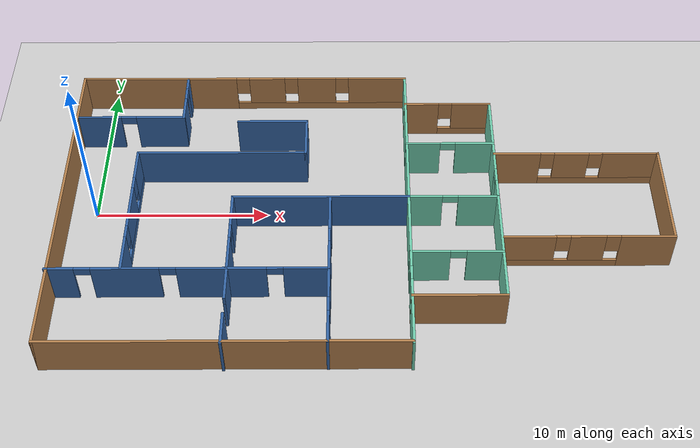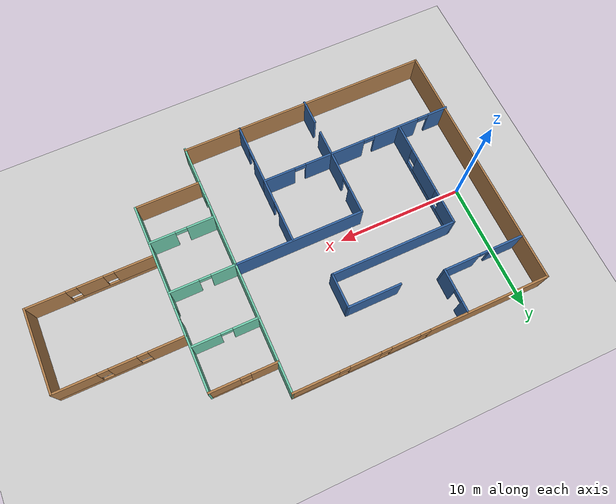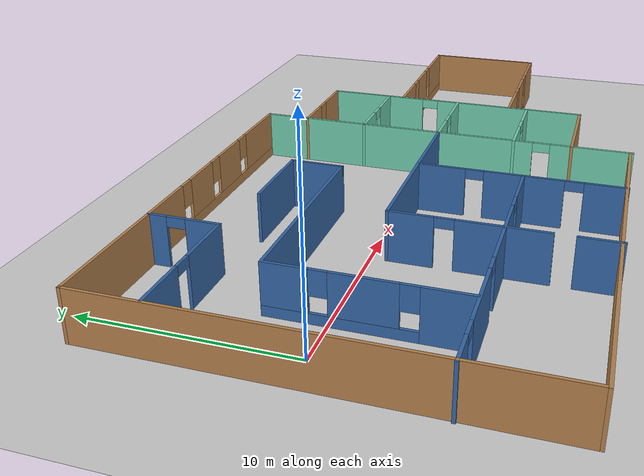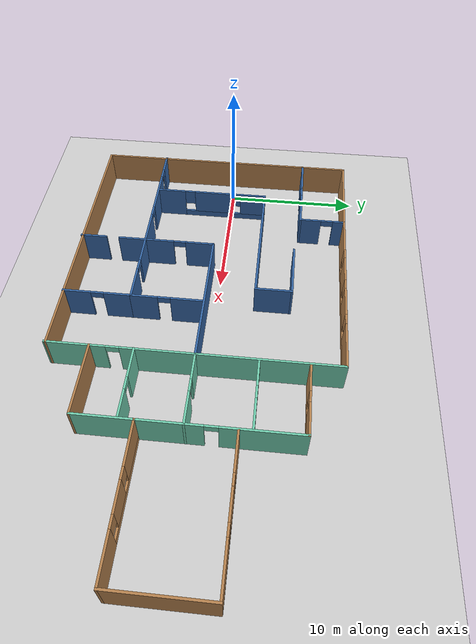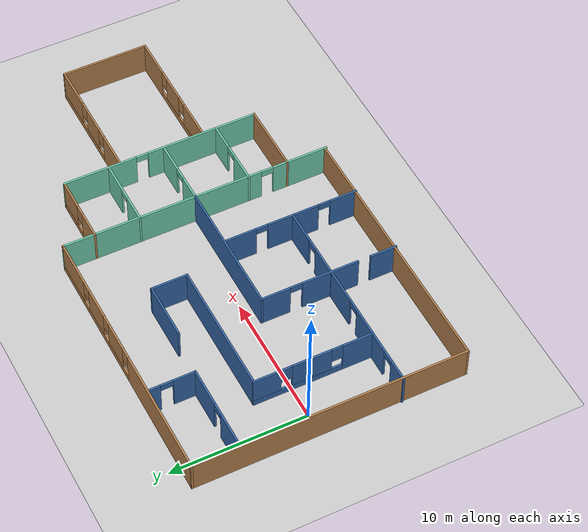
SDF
<sdf version="1.7">
 <world name="default">
  <model name="ground_plane">
   <static>1</static>
   <link name="link">
    <collision name="collision">
     <geometry><plane><normal>0 0 1</normal><size>100 100</size></plane></geometry>
     <surface>
      <contact><collide_bitmask>65535</collide_bitmask></contact>
      <friction><ode><mu>100</mu><mu2>50</mu2></ode></friction>
     </surface>
    </collision>
    <visual name="visual">
     <cast_shadows>0</cast_shadows>
     <geometry><plane><normal>0 0 1</normal><size>100 100</size></plane></geometry>
     <material>
      <script><uri>file://media/materials/scripts/gazebo.material</uri><name>Gazebo/Grey</name></script>
     </material>
    </visual>
   </link>
  </model>
  <model name="lab">
   <pose>15.5975 -0.861877 0 0 -0 0</pose>
   <link name="Wall_23">
    <collision name="Wall_23_Collision">
     <geometry><box><size>10.2 0.15 2.5</size></box></geometry>
     <pose>0 0 1.25 0 -0 0</pose>
    </collision>
    <visual name="Wall_23_Visual">
     <pose>0 0 1.25 0 -0 0</pose>
     <geometry><box><size>10.2 0.15 2.5</size></box></geometry>
     <material>
      <script><uri>file://media/materials/scripts/gazebo.material</uri><name>Gazebo/Grey</name></script>
      <ambient>0.203922 0.396078 0.643137 1</ambient>
     </material>
     <meta><layer>0</layer></meta>
    </visual>
    <pose>-2.41254 0.125 0 0 -0 3.14159</pose>
   </link>
   <link name="Wall_29">
    <pose>2.61246 -4.925 0 0 -0 -1.5708</pose>
    <visual name="Wall_29_Visual_0">
     <pose>-2.55908 0 1.25 0 -0 0</pose>
     <geometry><box><size>5.13184 0.15 2.5</size></box></geometry>
     <material>
      <script><uri>file://media/materials/scripts/gazebo.material</uri><name>Gazebo/Grey</name></script>
      <ambient>0.435294 0.796078 0.67451 1</ambient>
     </material>
     <meta><layer>0</layer></meta>
    </visual>
    <collision name="Wall_29_Collision_0">
     <geometry><box><size>5.13184 0.15 2.5</size></box></geometry>
     <pose>-2.55908 0 1.25 0 -0 0</pose>
    </collision>
    <visual name="Wall_29_Visual_1">
     <pose>3.01592 0 1.25 0 -0 0</pose>
     <geometry><box><size>4.21816 0.15 2.5</size></box></geometry>
     <material>
      <script><uri>file://media/materials/scripts/gazebo.material</uri><name>Gazebo/Grey</name></script>
      <ambient>0.435294 0.796078 0.67451 1</ambient>
     </material>
     <meta><layer>0</layer></meta>
    </visual>
    <collision name="Wall_29_Collision_1">
     <geometry><box><size>4.21816 0.15 2.5</size></box></geometry>
     <pose>3.01592 0 1.25 0 -0 0</pose>
    </collision>
    <visual name="Wall_29_Visual_2">
     <pose>0.456844 0 2.25 0 -0 0</pose>
     <geometry><box><size>0.9 0.15 0.5</size></box></geometry>
     <material>
      <script><uri>file://media/materials/scripts/gazebo.material</uri><name>Gazebo/Grey</name></script>
      <ambient>0.435294 0.796078 0.67451 1</ambient>
     </material>
     <meta><layer>0</layer></meta>
    </visual>
    <collision name="Wall_29_Collision_2">
     <geometry><box><size>0.9 0.15 0.5</size></box></geometry>
     <pose>0.456844 0 2.25 0 -0 0</pose>
    </collision>
   </link>
   <link name="Wall_31">
    <collision name="Wall_31_Collision">
     <geometry><box><size>20 0.15 2.5</size></box></geometry>
     <pose>0 0 1.25 0 -0 0</pose>
    </collision>
    <visual name="Wall_31_Visual">
     <pose>0 0 1.25 0 -0 0</pose>
     <geometry><box><size>20 0.15 2.5</size></box></geometry>
     <material>
      <script><uri>file://media/materials/scripts/gazebo.material</uri><name>Gazebo/Wood</name></script>
      <ambient>1 1 1 1</ambient>
     </material>
     <meta><layer>0</layer></meta>
    </visual>
    <pose>-7.31254 -9.875 0 0 -0 0</pose>
   </link>
   <link name="Wall_33">
    <pose>-7.43754 -4.925 0 0 -0 -1.5708</pose>
    <visual name="Wall_33_Visual_0">
     <pose>-4.0304 0 1.25 0 -0 0</pose>
     <geometry><box><size>2.18921 0.15 2.5</size></box></geometry>
     <material>
      <script><uri>file://media/materials/scripts/gazebo.material</uri><name>Gazebo/Grey</name></script>
      <ambient>0.203922 0.396078 0.643137 1</ambient>
     </material>
     <meta><layer>0</layer></meta>
    </visual>
    <collision name="Wall_33_Collision_0">
     <geometry><box><size>2.18921 0.15 2.5</size></box></geometry>
     <pose>-4.0304 0 1.25 0 -0 0</pose>
    </collision>
    <visual name="Wall_33_Visual_1">
     <pose>0.082327 0 1.25 0 -0 0</pose>
     <geometry><box><size>4.23624 0.15 2.5</size></box></geometry>
     <material>
      <script><uri>file://media/materials/scripts/gazebo.material</uri><name>Gazebo/Grey</name></script>
      <ambient>0.203922 0.396078 0.643137 1</ambient>
     </material>
     <meta><layer>0</layer></meta>
    </visual>
    <collision name="Wall_33_Collision_1">
     <geometry><box><size>4.23624 0.15 2.5</size></box></geometry>
     <pose>0.082327 0 1.25 0 -0 0</pose>
    </collision>
    <visual name="Wall_33_Visual_2">
     <pose>4.11272 0 1.25 0 -0 0</pose>
     <geometry><box><size>2.02455 0.15 2.5</size></box></geometry>
     <material>
      <script><uri>file://media/materials/scripts/gazebo.material</uri><name>Gazebo/Grey</name></script>
      <ambient>0.203922 0.396078 0.643137 1</ambient>
     </material>
     <meta><layer>0</layer></meta>
    </visual>
    <collision name="Wall_33_Collision_2">
     <geometry><box><size>2.02455 0.15 2.5</size></box></geometry>
     <pose>4.11272 0 1.25 0 -0 0</pose>
    </collision>
    <visual name="Wall_33_Visual_3">
     <pose>-2.48579 0 2.25 0 -0 0</pose>
     <geometry><box><size>0.9 0.15 0.5</size></box></geometry>
     <material>
      <script><uri>file://media/materials/scripts/gazebo.material</uri><name>Gazebo/Grey</name></script>
      <ambient>0.203922 0.396078 0.643137 1</ambient>
     </material>
     <meta><layer>0</layer></meta>
    </visual>
    <collision name="Wall_33_Collision_3">
     <geometry><box><size>0.9 0.15 0.5</size></box></geometry>
     <pose>-2.48579 0 2.25 0 -0 0</pose>
    </collision>
    <visual name="Wall_33_Visual_4">
     <pose>2.20045 0 2.25 0 -0 0</pose>
     <geometry><box><size>0 0.15 0.5</size></box></geometry>
     <material>
      <script><uri>file://media/materials/scripts/gazebo.material</uri><name>Gazebo/Grey</name></script>
      <ambient>0.203922 0.396078 0.643137 1</ambient>
     </material>
     <meta><layer>0</layer></meta>
    </visual>
    <collision name="Wall_33_Collision_4">
     <geometry><box><size>0 0.15 0.5</size></box></geometry>
     <pose>2.20045 0 2.25 0 -0 0</pose>
    </collision>
   </link>
   <link name="Wall_35">
    <pose>-4.67701 -5.06118 0 0 -0 0</pose>
    <visual name="Wall_35_Visual_0">
     <pose>-1.73152 0 1.25 0 -0 0</pose>
     <geometry><box><size>2.28696 0.15 2.5</size></box></geometry>
     <material>
      <script><uri>file://media/materials/scripts/gazebo.material</uri><name>Gazebo/Grey</name></script>
      <ambient>0.203922 0.396078 0.643137 1</ambient>
     </material>
     <meta><layer>0</layer></meta>
    </visual>
    <collision name="Wall_35_Collision_0">
     <geometry><box><size>2.28696 0.15 2.5</size></box></geometry>
     <pose>-1.73152 0 1.25 0 -0 0</pose>
    </collision>
    <visual name="Wall_35_Visual_1">
     <pose>1.59348 0 1.25 0 -0 0</pose>
     <geometry><box><size>2.56304 0.15 2.5</size></box></geometry>
     <material>
      <script><uri>file://media/materials/scripts/gazebo.material</uri><name>Gazebo/Grey</name></script>
      <ambient>0.203922 0.396078 0.643137 1</ambient>
     </material>
     <meta><layer>0</layer></meta>
    </visual>
    <collision name="Wall_35_Collision_1">
     <geometry><box><size>2.56304 0.15 2.5</size></box></geometry>
     <pose>1.59348 0 1.25 0 -0 0</pose>
    </collision>
    <visual name="Wall_35_Visual_2">
     <pose>-0.138039 0 2.25 0 -0 0</pose>
     <geometry><box><size>0.9 0.15 0.5</size></box></geometry>
     <material>
      <script><uri>file://media/materials/scripts/gazebo.material</uri><name>Gazebo/Grey</name></script>
      <ambient>0.203922 0.396078 0.643137 1</ambient>
     </material>
     <meta><layer>0</layer></meta>
    </visual>
    <collision name="Wall_35_Collision_2">
     <geometry><box><size>0.9 0.15 0.5</size></box></geometry>
     <pose>-0.138039 0 2.25 0 -0 0</pose>
    </collision>
   </link>
   <link name="Wall_36">
    <pose>-1.87701 -2.51118 0 0 -0 1.5708</pose>
    <visual name="Wall_36_Visual_0">
     <pose>-1.63527 0 1.25 0 -0 0</pose>
     <geometry><box><size>1.97946 0.15 2.5</size></box></geometry>
     <material>
      <script><uri>file://media/materials/scripts/gazebo.material</uri><name>Gazebo/Grey</name></script>
      <ambient>0.203922 0.396078 0.643137 1</ambient>
     </material>
     <meta><layer>0</layer></meta>
    </visual>
    <collision name="Wall_36_Collision_0">
     <geometry><box><size>1.97946 0.15 2.5</size></box></geometry>
     <pose>-1.63527 0 1.25 0 -0 0</pose>
    </collision>
    <visual name="Wall_36_Visual_1">
     <pose>1.43973 0 1.25 0 -0 0</pose>
     <geometry><box><size>2.37054 0.15 2.5</size></box></geometry>
     <material>
      <script><uri>file://media/materials/scripts/gazebo.material</uri><name>Gazebo/Grey</name></script>
      <ambient>0.203922 0.396078 0.643137 1</ambient>
     </material>
     <meta><layer>0</layer></meta>
    </visual>
    <collision name="Wall_36_Collision_1">
     <geometry><box><size>2.37054 0.15 2.5</size></box></geometry>
     <pose>1.43973 0 1.25 0 -0 0</pose>
    </collision>
    <visual name="Wall_36_Visual_2">
     <pose>-0.195537 0 2.25 0 -0 0</pose>
     <geometry><box><size>0.9 0.15 0.5</size></box></geometry>
     <material>
      <script><uri>file://media/materials/scripts/gazebo.material</uri><name>Gazebo/Grey</name></script>
      <ambient>0.203922 0.396078 0.643137 1</ambient>
     </material>
     <meta><layer>0</layer></meta>
    </visual>
    <collision name="Wall_36_Collision_2">
     <geometry><box><size>0.9 0.15 0.5</size></box></geometry>
     <pose>-0.195537 0 2.25 0 -0 0</pose>
    </collision>
   </link>
   <link name="Wall_38">
    <pose>-1.87701 -7.48618 0 0 -0 -1.5708</pose>
    <visual name="Wall_38_Visual_0">
     <pose>-1.48387 0 1.25 0 -0 0</pose>
     <geometry><box><size>2.03226 0.15 2.5</size></box></geometry>
     <material>
      <script><uri>file://media/materials/scripts/gazebo.material</uri><name>Gazebo/Grey</name></script>
      <ambient>0.203922 0.396078 0.643137 1</ambient>
     </material>
     <meta><layer>0</layer></meta>
    </visual>
    <collision name="Wall_38_Collision_0">
     <geometry><box><size>2.03226 0.15 2.5</size></box></geometry>
     <pose>-1.48387 0 1.25 0 -0 0</pose>
    </collision>
    <visual name="Wall_38_Visual_1">
     <pose>1.46613 0 1.25 0 -0 0</pose>
     <geometry><box><size>2.06774 0.15 2.5</size></box></geometry>
     <material>
      <script><uri>file://media/materials/scripts/gazebo.material</uri><name>Gazebo/Grey</name></script>
      <ambient>0.203922 0.396078 0.643137 1</ambient>
     </material>
     <meta><layer>0</layer></meta>
    </visual>
    <collision name="Wall_38_Collision_1">
     <geometry><box><size>2.06774 0.15 2.5</size></box></geometry>
     <pose>1.46613 0 1.25 0 -0 0</pose>
    </collision>
    <visual name="Wall_38_Visual_2">
     <pose>-0.01774 0 2.25 0 -0 0</pose>
     <geometry><box><size>0.9 0.15 0.5</size></box></geometry>
     <material>
      <script><uri>file://media/materials/scripts/gazebo.material</uri><name>Gazebo/Grey</name></script>
      <ambient>0.203922 0.396078 0.643137 1</ambient>
     </material>
     <meta><layer>0</layer></meta>
    </visual>
    <collision name="Wall_38_Collision_2">
     <geometry><box><size>0.9 0.15 0.5</size></box></geometry>
     <pose>-0.01774 0 2.25 0 -0 0</pose>
    </collision>
   </link>
   <link name="Wall_40">
    <pose>-12.402 -5.06118 0 0 -0 3.14159</pose>
    <visual name="Wall_40_Visual_0">
     <pose>-3.60259 0 1.25 0 -0 0</pose>
     <geometry><box><size>2.79481 0.15 2.5</size></box></geometry>
     <material>
      <script><uri>file://media/materials/scripts/gazebo.material</uri><name>Gazebo/Grey</name></script>
      <ambient>0.203922 0.396078 0.643137 1</ambient>
     </material>
     <meta><layer>0</layer></meta>
    </visual>
    <collision name="Wall_40_Collision_0">
     <geometry><box><size>2.79481 0.15 2.5</size></box></geometry>
     <pose>-3.60259 0 1.25 0 -0 0</pose>
    </collision>
    <visual name="Wall_40_Visual_1">
     <pose>0.57217 0 1.25 0 -0 0</pose>
     <geometry><box><size>3.75472 0.15 2.5</size></box></geometry>
     <material>
      <script><uri>file://media/materials/scripts/gazebo.material</uri><name>Gazebo/Grey</name></script>
      <ambient>0.203922 0.396078 0.643137 1</ambient>
     </material>
     <meta><layer>0</layer></meta>
    </visual>
    <collision name="Wall_40_Collision_1">
     <geometry><box><size>3.75472 0.15 2.5</size></box></geometry>
     <pose>0.57217 0 1.25 0 -0 0</pose>
    </collision>
    <visual name="Wall_40_Visual_2">
     <pose>4.17476 0 1.25 0 -0 0</pose>
     <geometry><box><size>1.65047 0.15 2.5</size></box></geometry>
     <material>
      <script><uri>file://media/materials/scripts/gazebo.material</uri><name>Gazebo/Grey</name></script>
      <ambient>0.203922 0.396078 0.643137 1</ambient>
     </material>
     <meta><layer>0</layer></meta>
    </visual>
    <collision name="Wall_40_Collision_2">
     <geometry><box><size>1.65047 0.15 2.5</size></box></geometry>
     <pose>4.17476 0 1.25 0 -0 0</pose>
    </collision>
    <visual name="Wall_40_Visual_3">
     <pose>-1.75519 0 2.25 0 -0 0</pose>
     <geometry><box><size>0.9 0.15 0.5</size></box></geometry>
     <material>
      <script><uri>file://media/materials/scripts/gazebo.material</uri><name>Gazebo/Grey</name></script>
      <ambient>0.203922 0.396078 0.643137 1</ambient>
     </material>
     <meta><layer>0</layer></meta>
    </visual>
    <collision name="Wall_40_Collision_3">
     <geometry><box><size>0.9 0.15 0.5</size></box></geometry>
     <pose>-1.75519 0 2.25 0 -0 0</pose>
    </collision>
    <visual name="Wall_40_Visual_4">
     <pose>2.89953 0 2.25 0 -0 0</pose>
     <geometry><box><size>0.9 0.15 0.5</size></box></geometry>
     <material>
      <script><uri>file://media/materials/scripts/gazebo.material</uri><name>Gazebo/Grey</name></script>
      <ambient>0.203922 0.396078 0.643137 1</ambient>
     </material>
     <meta><layer>0</layer></meta>
    </visual>
    <collision name="Wall_40_Collision_4">
     <geometry><box><size>0.9 0.15 0.5</size></box></geometry>
     <pose>2.89953 0 2.25 0 -0 0</pose>
    </collision>
   </link>
   <link name="Wall_49">
    <pose>-13.22 -0.686186 0 0 -0 1.5708</pose>
    <visual name="Wall_49_Visual_0">
     <pose>-3.26401 0 1.25 0 -0 0</pose>
     <geometry><box><size>2.22198 0.15 2.5</size></box></geometry>
     <material>
      <script><uri>file://media/materials/scripts/gazebo.material</uri><name>Gazebo/Grey</name></script>
      <ambient>0.203922 0.396078 0.643137 1</ambient>
     </material>
     <meta><layer>0</layer></meta>
    </visual>
    <collision name="Wall_49_Collision_0">
     <geometry><box><size>2.22198 0.15 2.5</size></box></geometry>
     <pose>-3.26401 0 1.25 0 -0 0</pose>
    </collision>
    <visual name="Wall_49_Visual_1">
     <pose>1.11099 0 0.25 0 -0 0</pose>
     <geometry><box><size>6.52802 0.15 0.5</size></box></geometry>
     <material>
      <script><uri>file://media/materials/scripts/gazebo.material</uri><name>Gazebo/Grey</name></script>
      <ambient>0.203922 0.396078 0.643137 1</ambient>
     </material>
     <meta><layer>0</layer></meta>
    </visual>
    <collision name="Wall_49_Collision_1">
     <geometry><box><size>6.52802 0.15 0.5</size></box></geometry>
     <pose>1.11099 0 0.25 0 -0 0</pose>
    </collision>
    <visual name="Wall_49_Visual_2">
     <pose>0.092815 0 1.5 0 -0 0</pose>
     <geometry><box><size>2.89167 0.15 2</size></box></geometry>
     <material>
      <script><uri>file://media/materials/scripts/gazebo.material</uri><name>Gazebo/Grey</name></script>
      <ambient>0.203922 0.396078 0.643137 1</ambient>
     </material>
     <meta><layer>0</layer></meta>
    </visual>
    <collision name="Wall_49_Collision_2">
     <geometry><box><size>2.89167 0.15 2</size></box></geometry>
     <pose>0.092815 0 1.5 0 -0 0</pose>
    </collision>
    <visual name="Wall_49_Visual_3">
     <pose>3.35683 0 1.5 0 -0 0</pose>
     <geometry><box><size>2.03635 0.15 2</size></box></geometry>
     <material>
      <script><uri>file://media/materials/scripts/gazebo.material</uri><name>Gazebo/Grey</name></script>
      <ambient>0.203922 0.396078 0.643137 1</ambient>
     </material>
     <meta><layer>0</layer></meta>
    </visual>
    <collision name="Wall_49_Collision_3">
     <geometry><box><size>2.03635 0.15 2</size></box></geometry>
     <pose>3.35683 0 1.5 0 -0 0</pose>
    </collision>
    <visual name="Wall_49_Visual_4">
     <pose>-1.75302 0 1.9 0 -0 0</pose>
     <geometry><box><size>0.8 0.15 1.2</size></box></geometry>
     <material>
      <script><uri>file://media/materials/scripts/gazebo.material</uri><name>Gazebo/Grey</name></script>
      <ambient>0.203922 0.396078 0.643137 1</ambient>
     </material>
     <meta><layer>0</layer></meta>
    </visual>
    <collision name="Wall_49_Collision_4">
     <geometry><box><size>0.8 0.15 1.2</size></box></geometry>
     <pose>-1.75302 0 1.9 0 -0 0</pose>
    </collision>
    <visual name="Wall_49_Visual_5">
     <pose>1.93865 0 1.9 0 -0 0</pose>
     <geometry><box><size>0.8 0.15 1.2</size></box></geometry>
     <material>
      <script><uri>file://media/materials/scripts/gazebo.material</uri><name>Gazebo/Grey</name></script>
      <ambient>0.203922 0.396078 0.643137 1</ambient>
     </material>
     <meta><layer>0</layer></meta>
    </visual>
    <collision name="Wall_49_Collision_5">
     <geometry><box><size>0.8 0.15 1.2</size></box></geometry>
     <pose>1.93865 0 1.9 0 -0 0</pose>
    </collision>
   </link>
   <link name="Wall_5">
    <collision name="Wall_5_Collision">
     <geometry><box><size>20 0.15 2.5</size></box></geometry>
     <pose>0 0 1.25 0 -0 0</pose>
    </collision>
    <visual name="Wall_5_Visual">
     <pose>0 0 1.25 0 -0 0</pose>
     <geometry><box><size>20 0.15 2.5</size></box></geometry>
     <material>
      <script><uri>file://media/materials/scripts/gazebo.material</uri><name>Gazebo/Wood</name></script>
      <ambient>1 1 1 1</ambient>
     </material>
     <meta><layer>0</layer></meta>
    </visual>
    <pose>-17.2375 0.05 0 0 -0 -1.5708</pose>
   </link>
   <link name="Wall_50">
    <collision name="Wall_50_Collision">
     <geometry><box><size>10 0.15 2.5</size></box></geometry>
     <pose>0 0 1.25 0 -0 0</pose>
    </collision>
    <visual name="Wall_50_Visual">
     <pose>0 0 1.25 0 -0 0</pose>
     <geometry><box><size>10 0.15 2.5</size></box></geometry>
     <material>
      <script><uri>file://media/materials/scripts/gazebo.material</uri><name>Gazebo/Grey</name></script>
      <ambient>0.203922 0.396078 0.643137 1</ambient>
     </material>
     <meta><layer>0</layer></meta>
    </visual>
    <pose>-8.29501 3.61381 0 0 -0 0</pose>
   </link>
   <link name="Wall_51">
    <collision name="Wall_51_Collision">
     <geometry><box><size>2.75 0.15 2.5</size></box></geometry>
     <pose>0 0 1.25 0 -0 0</pose>
    </collision>
    <visual name="Wall_51_Visual">
     <pose>0 0 1.25 0 -0 0</pose>
     <geometry><box><size>2.75 0.15 2.5</size></box></geometry>
     <material>
      <script><uri>file://media/materials/scripts/gazebo.material</uri><name>Gazebo/Grey</name></script>
      <ambient>0.203922 0.396078 0.643137 1</ambient>
     </material>
     <meta><layer>0</layer></meta>
    </visual>
    <pose>-3.37001 4.91381 0 0 -0 1.5708</pose>
   </link>
   <link name="Wall_52">
    <collision name="Wall_52_Collision">
     <geometry><box><size>4.25 0.15 2.5</size></box></geometry>
     <pose>0 0 1.25 0 -0 0</pose>
    </collision>
    <visual name="Wall_52_Visual">
     <pose>0 0 1.25 0 -0 0</pose>
     <geometry><box><size>4.25 0.15 2.5</size></box></geometry>
     <material>
      <script><uri>file://media/materials/scripts/gazebo.material</uri><name>Gazebo/Grey</name></script>
      <ambient>0.203922 0.396078 0.643137 1</ambient>
     </material>
     <meta><layer>0</layer></meta>
    </visual>
    <pose>-5.42001 6.21381 0 0 -0 3.14159</pose>
   </link>
   <link name="Wall_54">
    <pose>-10.8124 8.26601 0 0 -0 -1.5708</pose>
    <visual name="Wall_54_Visual_0">
     <pose>-1.2849 0 1.25 0 -0 0</pose>
     <geometry><box><size>0.930201 0.15 2.5</size></box></geometry>
     <material>
      <script><uri>file://media/materials/scripts/gazebo.material</uri><name>Gazebo/Grey</name></script>
      <ambient>0.203922 0.396078 0.643137 1</ambient>
     </material>
     <meta><layer>0</layer></meta>
    </visual>
    <collision name="Wall_54_Collision_0">
     <geometry><box><size>0.930201 0.15 2.5</size></box></geometry>
     <pose>-1.2849 0 1.25 0 -0 0</pose>
    </collision>
    <visual name="Wall_54_Visual_1">
     <pose>0.915101 0 1.25 0 -0 0</pose>
     <geometry><box><size>1.6698 0.15 2.5</size></box></geometry>
     <material>
      <script><uri>file://media/materials/scripts/gazebo.material</uri><name>Gazebo/Grey</name></script>
      <ambient>0.203922 0.396078 0.643137 1</ambient>
     </material>
     <meta><layer>0</layer></meta>
    </visual>
    <collision name="Wall_54_Collision_1">
     <geometry><box><size>1.6698 0.15 2.5</size></box></geometry>
     <pose>0.915101 0 1.25 0 -0 0</pose>
    </collision>
    <visual name="Wall_54_Visual_2">
     <pose>-0.369799 0 2.25 0 -0 0</pose>
     <geometry><box><size>0.9 0.15 0.5</size></box></geometry>
     <material>
      <script><uri>file://media/materials/scripts/gazebo.material</uri><name>Gazebo/Grey</name></script>
      <ambient>0.203922 0.396078 0.643137 1</ambient>
     </material>
     <meta><layer>0</layer></meta>
    </visual>
    <collision name="Wall_54_Collision_2">
     <geometry><box><size>0.9 0.15 0.5</size></box></geometry>
     <pose>-0.369799 0 2.25 0 -0 0</pose>
    </collision>
   </link>
   <link name="Wall_55">
    <pose>-13.9874 6.59101 0 0 -0 3.14159</pose>
    <visual name="Wall_55_Visual_0">
     <pose>-1.78146 0 1.25 0 -0 0</pose>
     <geometry><box><size>2.93709 0.15 2.5</size></box></geometry>
     <material>
      <script><uri>file://media/materials/scripts/gazebo.material</uri><name>Gazebo/Grey</name></script>
      <ambient>0.203922 0.396078 0.643137 1</ambient>
     </material>
     <meta><layer>0</layer></meta>
    </visual>
    <collision name="Wall_55_Collision_0">
     <geometry><box><size>2.93709 0.15 2.5</size></box></geometry>
     <pose>-1.78146 0 1.25 0 -0 0</pose>
    </collision>
    <visual name="Wall_55_Visual_1">
     <pose>1.91854 0 1.25 0 -0 0</pose>
     <geometry><box><size>2.66291 0.15 2.5</size></box></geometry>
     <material>
      <script><uri>file://media/materials/scripts/gazebo.material</uri><name>Gazebo/Grey</name></script>
      <ambient>0.203922 0.396078 0.643137 1</ambient>
     </material>
     <meta><layer>0</layer></meta>
    </visual>
    <collision name="Wall_55_Collision_1">
     <geometry><box><size>2.66291 0.15 2.5</size></box></geometry>
     <pose>1.91854 0 1.25 0 -0 0</pose>
    </collision>
    <visual name="Wall_55_Visual_2">
     <pose>0.137089 0 2.25 0 -0 0</pose>
     <geometry><box><size>0.9 0.15 0.5</size></box></geometry>
     <material>
      <script><uri>file://media/materials/scripts/gazebo.material</uri><name>Gazebo/Grey</name></script>
      <ambient>0.203922 0.396078 0.643137 1</ambient>
     </material>
     <meta><layer>0</layer></meta>
    </visual>
    <collision name="Wall_55_Collision_2">
     <geometry><box><size>0.9 0.15 0.5</size></box></geometry>
     <pose>0.137089 0 2.25 0 -0 0</pose>
    </collision>
   </link>
   <link name="Wall_57">
    <pose>5.16025 7.66391 0 0 -0 0</pose>
    <visual name="Wall_57_Visual_0">
     <pose>-1.57792 0 1.25 0 -0 0</pose>
     <geometry><box><size>2.09416 0.15 2.5</size></box></geometry>
     <material>
      <script><uri>file://media/materials/scripts/gazebo.material</uri><name>Gazebo/Wood</name></script>
      <ambient>0.921569 0.807843 0.615686 1</ambient>
     </material>
     <meta><layer>0</layer></meta>
    </visual>
    <collision name="Wall_57_Collision_0">
     <geometry><box><size>2.09416 0.15 2.5</size></box></geometry>
     <pose>-1.57792 0 1.25 0 -0 0</pose>
    </collision>
    <visual name="Wall_57_Visual_1">
     <pose>1.04708 0 0.25 0 -0 0</pose>
     <geometry><box><size>3.15584 0.15 0.5</size></box></geometry>
     <material>
      <script><uri>file://media/materials/scripts/gazebo.material</uri><name>Gazebo/Wood</name></script>
      <ambient>0.921569 0.807843 0.615686 1</ambient>
     </material>
     <meta><layer>0</layer></meta>
    </visual>
    <collision name="Wall_57_Collision_1">
     <geometry><box><size>3.15584 0.15 0.5</size></box></geometry>
     <pose>1.04708 0 0.25 0 -0 0</pose>
    </collision>
    <visual name="Wall_57_Visual_2">
     <pose>1.44708 0 1.5 0 -0 0</pose>
     <geometry><box><size>2.35584 0.15 2</size></box></geometry>
     <material>
      <script><uri>file://media/materials/scripts/gazebo.material</uri><name>Gazebo/Wood</name></script>
      <ambient>0.921569 0.807843 0.615686 1</ambient>
     </material>
     <meta><layer>0</layer></meta>
    </visual>
    <collision name="Wall_57_Collision_2">
     <geometry><box><size>2.35584 0.15 2</size></box></geometry>
     <pose>1.44708 0 1.5 0 -0 0</pose>
    </collision>
    <visual name="Wall_57_Visual_3">
     <pose>-0.130837 0 1.9 0 -0 0</pose>
     <geometry><box><size>0.8 0.15 1.2</size></box></geometry>
     <material>
      <script><uri>file://media/materials/scripts/gazebo.material</uri><name>Gazebo/Wood</name></script>
      <ambient>0.921569 0.807843 0.615686 1</ambient>
     </material>
     <meta><layer>0</layer></meta>
    </visual>
    <collision name="Wall_57_Collision_3">
     <geometry><box><size>0.8 0.15 1.2</size></box></geometry>
     <pose>-0.130837 0 1.9 0 -0 0</pose>
    </collision>
   </link>
   <link name="Wall_58">
    <pose>7.71025 0.363913 0 0 -0 -1.5708</pose>
    <visual name="Wall_58_Visual_0">
     <pose>-4.62429 0 1.25 0 -0 0</pose>
     <geometry><box><size>5.50142 0.15 2.5</size></box></geometry>
     <material>
      <script><uri>file://media/materials/scripts/gazebo.material</uri><name>Gazebo/Grey</name></script>
      <ambient>0.435294 0.796078 0.67451 1</ambient>
     </material>
     <meta><layer>0</layer></meta>
    </visual>
    <collision name="Wall_58_Collision_0">
     <geometry><box><size>5.50142 0.15 2.5</size></box></geometry>
     <pose>-4.62429 0 1.25 0 -0 0</pose>
    </collision>
    <visual name="Wall_58_Visual_1">
     <pose>3.20071 0 1.25 0 -0 0</pose>
     <geometry><box><size>8.34858 0.15 2.5</size></box></geometry>
     <material>
      <script><uri>file://media/materials/scripts/gazebo.material</uri><name>Gazebo/Grey</name></script>
      <ambient>0.435294 0.796078 0.67451 1</ambient>
     </material>
     <meta><layer>0</layer></meta>
    </visual>
    <collision name="Wall_58_Collision_1">
     <geometry><box><size>8.34858 0.15 2.5</size></box></geometry>
     <pose>3.20071 0 1.25 0 -0 0</pose>
    </collision>
    <visual name="Wall_58_Visual_2">
     <pose>-1.42358 0 2.25 0 -0 0</pose>
     <geometry><box><size>0.9 0.15 0.5</size></box></geometry>
     <material>
      <script><uri>file://media/materials/scripts/gazebo.material</uri><name>Gazebo/Grey</name></script>
      <ambient>0.435294 0.796078 0.67451 1</ambient>
     </material>
     <meta><layer>0</layer></meta>
    </visual>
    <collision name="Wall_58_Collision_2">
     <geometry><box><size>0.9 0.15 0.5</size></box></geometry>
     <pose>-1.42358 0 2.25 0 -0 0</pose>
    </collision>
   </link>
   <link name="Wall_59">
    <collision name="Wall_59_Collision">
     <geometry><box><size>5.25 0.15 2.5</size></box></geometry>
     <pose>0 0 1.25 0 -0 0</pose>
    </collision>
    <visual name="Wall_59_Visual">
     <pose>0 0 1.25 0 -0 0</pose>
     <geometry><box><size>5.25 0.15 2.5</size></box></geometry>
     <material>
      <script><uri>file://media/materials/scripts/gazebo.material</uri><name>Gazebo/Wood</name></script>
      <ambient>1 1 1 1</ambient>
     </material>
     <meta><layer>0</layer></meta>
    </visual>
    <pose>5.16025 -6.93609 0 0 -0 3.14159</pose>
   </link>
   <link name="Wall_61">
    <pose>5.15095 4.32005 0 0 -0 0</pose>
    <visual name="Wall_61_Visual_0">
     <pose>-1.59827 0 1.25 0 -0 0</pose>
     <geometry><box><size>2.05346 0.15 2.5</size></box></geometry>
     <material>
      <script><uri>file://media/materials/scripts/gazebo.material</uri><name>Gazebo/Grey</name></script>
      <ambient>0.435294 0.796078 0.67451 1</ambient>
     </material>
     <meta><layer>0</layer></meta>
    </visual>
    <collision name="Wall_61_Collision_0">
     <geometry><box><size>2.05346 0.15 2.5</size></box></geometry>
     <pose>-1.59827 0 1.25 0 -0 0</pose>
    </collision>
    <visual name="Wall_61_Visual_1">
     <pose>1.47673 0 1.25 0 -0 0</pose>
     <geometry><box><size>2.29654 0.15 2.5</size></box></geometry>
     <material>
      <script><uri>file://media/materials/scripts/gazebo.material</uri><name>Gazebo/Grey</name></script>
      <ambient>0.435294 0.796078 0.67451 1</ambient>
     </material>
     <meta><layer>0</layer></meta>
    </visual>
    <collision name="Wall_61_Collision_1">
     <geometry><box><size>2.29654 0.15 2.5</size></box></geometry>
     <pose>1.47673 0 1.25 0 -0 0</pose>
    </collision>
    <visual name="Wall_61_Visual_2">
     <pose>-0.12154 0 2.25 0 -0 0</pose>
     <geometry><box><size>0.9 0.15 0.5</size></box></geometry>
     <material>
      <script><uri>file://media/materials/scripts/gazebo.material</uri><name>Gazebo/Grey</name></script>
      <ambient>0.435294 0.796078 0.67451 1</ambient>
     </material>
     <meta><layer>0</layer></meta>
    </visual>
    <collision name="Wall_61_Collision_2">
     <geometry><box><size>0.9 0.15 0.5</size></box></geometry>
     <pose>-0.12154 0 2.25 0 -0 0</pose>
    </collision>
   </link>
   <link name="Wall_63">
    <pose>5.16247 0.125 0 0 -0 0</pose>
    <visual name="Wall_63_Visual_0">
     <pose>-1.63078 0 1.25 0 -0 0</pose>
     <geometry><box><size>1.98844 0.15 2.5</size></box></geometry>
     <material>
      <script><uri>file://media/materials/scripts/gazebo.material</uri><name>Gazebo/Grey</name></script>
      <ambient>0.435294 0.796078 0.67451 1</ambient>
     </material>
     <meta><layer>0</layer></meta>
    </visual>
    <collision name="Wall_63_Collision_0">
     <geometry><box><size>1.98844 0.15 2.5</size></box></geometry>
     <pose>-1.63078 0 1.25 0 -0 0</pose>
    </collision>
    <visual name="Wall_63_Visual_1">
     <pose>1.44422 0 1.25 0 -0 0</pose>
     <geometry><box><size>2.36156 0.15 2.5</size></box></geometry>
     <material>
      <script><uri>file://media/materials/scripts/gazebo.material</uri><name>Gazebo/Grey</name></script>
      <ambient>0.435294 0.796078 0.67451 1</ambient>
     </material>
     <meta><layer>0</layer></meta>
    </visual>
    <collision name="Wall_63_Collision_1">
     <geometry><box><size>2.36156 0.15 2.5</size></box></geometry>
     <pose>1.44422 0 1.25 0 -0 0</pose>
    </collision>
    <visual name="Wall_63_Visual_2">
     <pose>-0.186559 0 2.25 0 -0 0</pose>
     <geometry><box><size>0.9 0.15 0.5</size></box></geometry>
     <material>
      <script><uri>file://media/materials/scripts/gazebo.material</uri><name>Gazebo/Grey</name></script>
      <ambient>0.435294 0.796078 0.67451 1</ambient>
     </material>
     <meta><layer>0</layer></meta>
    </visual>
    <collision name="Wall_63_Collision_2">
     <geometry><box><size>0.9 0.15 0.5</size></box></geometry>
     <pose>-0.186559 0 2.25 0 -0 0</pose>
    </collision>
   </link>
   <link name="Wall_65">
    <pose>5.15095 -3.93288 0 0 -0 0</pose>
    <visual name="Wall_65_Visual_0">
     <pose>-1.49127 0 1.25 0 -0 0</pose>
     <geometry><box><size>2.26747 0.15 2.5</size></box></geometry>
     <material>
      <script><uri>file://media/materials/scripts/gazebo.material</uri><name>Gazebo/Grey</name></script>
      <ambient>0.435294 0.796078 0.67451 1</ambient>
     </material>
     <meta><layer>0</layer></meta>
    </visual>
    <collision name="Wall_65_Collision_0">
     <geometry><box><size>2.26747 0.15 2.5</size></box></geometry>
     <pose>-1.49127 0 1.25 0 -0 0</pose>
    </collision>
    <visual name="Wall_65_Visual_1">
     <pose>1.58373 0 1.25 0 -0 0</pose>
     <geometry><box><size>2.08253 0.15 2.5</size></box></geometry>
     <material>
      <script><uri>file://media/materials/scripts/gazebo.material</uri><name>Gazebo/Grey</name></script>
      <ambient>0.435294 0.796078 0.67451 1</ambient>
     </material>
     <meta><layer>0</layer></meta>
    </visual>
    <collision name="Wall_65_Collision_1">
     <geometry><box><size>2.08253 0.15 2.5</size></box></geometry>
     <pose>1.58373 0 1.25 0 -0 0</pose>
    </collision>
    <visual name="Wall_65_Visual_2">
     <pose>0.09247 0 2.25 0 -0 0</pose>
     <geometry><box><size>0.9 0.15 0.5</size></box></geometry>
     <material>
      <script><uri>file://media/materials/scripts/gazebo.material</uri><name>Gazebo/Grey</name></script>
      <ambient>0.435294 0.796078 0.67451 1</ambient>
     </material>
     <meta><layer>0</layer></meta>
    </visual>
    <collision name="Wall_65_Collision_2">
     <geometry><box><size>0.9 0.15 0.5</size></box></geometry>
     <pose>0.09247 0 2.25 0 -0 0</pose>
    </collision>
   </link>
   <link name="Wall_67">
    <pose>12.527 3.45056 0 0 -0 0</pose>
    <visual name="Wall_67_Visual_0">
     <pose>-3.47042 0 1.25 0 -0 0</pose>
     <geometry><box><size>2.80917 0.15 2.5</size></box></geometry>
     <material>
      <script><uri>file://media/materials/scripts/gazebo.material</uri><name>Gazebo/Wood</name></script>
      <ambient>1 1 1 1</ambient>
     </material>
     <meta><layer>0</layer></meta>
    </visual>
    <collision name="Wall_67_Collision_0">
     <geometry><box><size>2.80917 0.15 2.5</size></box></geometry>
     <pose>-3.47042 0 1.25 0 -0 0</pose>
    </collision>
    <visual name="Wall_67_Visual_1">
     <pose>1.40458 0 0.25 0 -0 0</pose>
     <geometry><box><size>6.94083 0.15 0.5</size></box></geometry>
     <material>
      <script><uri>file://media/materials/scripts/gazebo.material</uri><name>Gazebo/Wood</name></script>
      <ambient>1 1 1 1</ambient>
     </material>
     <meta><layer>0</layer></meta>
    </visual>
    <collision name="Wall_67_Collision_1">
     <geometry><box><size>6.94083 0.15 0.5</size></box></geometry>
     <pose>1.40458 0 0.25 0 -0 0</pose>
    </collision>
    <visual name="Wall_67_Visual_2">
     <pose>-0.248014 0 1.5 0 -0 0</pose>
     <geometry><box><size>2.03563 0.15 2</size></box></geometry>
     <material>
      <script><uri>file://media/materials/scripts/gazebo.material</uri><name>Gazebo/Wood</name></script>
      <ambient>1 1 1 1</ambient>
     </material>
     <meta><layer>0</layer></meta>
    </visual>
    <collision name="Wall_67_Collision_2">
     <geometry><box><size>2.03563 0.15 2</size></box></geometry>
     <pose>-0.248014 0 1.5 0 -0 0</pose>
    </collision>
    <visual name="Wall_67_Visual_3">
     <pose>3.2224 0 1.5 0 -0 0</pose>
     <geometry><box><size>3.3052 0.15 2</size></box></geometry>
     <material>
      <script><uri>file://media/materials/scripts/gazebo.material</uri><name>Gazebo/Wood</name></script>
      <ambient>1 1 1 1</ambient>
     </material>
     <meta><layer>0</layer></meta>
    </visual>
    <collision name="Wall_67_Collision_3">
     <geometry><box><size>3.3052 0.15 2</size></box></geometry>
     <pose>3.2224 0 1.5 0 -0 0</pose>
    </collision>
    <visual name="Wall_67_Visual_4">
     <pose>-1.66583 0 1.9 0 -0 0</pose>
     <geometry><box><size>0.8 0.15 1.2</size></box></geometry>
     <material>
      <script><uri>file://media/materials/scripts/gazebo.material</uri><name>Gazebo/Wood</name></script>
      <ambient>1 1 1 1</ambient>
     </material>
     <meta><layer>0</layer></meta>
    </visual>
    <collision name="Wall_67_Collision_4">
     <geometry><box><size>0.8 0.15 1.2</size></box></geometry>
     <pose>-1.66583 0 1.9 0 -0 0</pose>
    </collision>
    <visual name="Wall_67_Visual_5">
     <pose>1.1698 0 1.9 0 -0 0</pose>
     <geometry><box><size>0.8 0.15 1.2</size></box></geometry>
     <material>
      <script><uri>file://media/materials/scripts/gazebo.material</uri><name>Gazebo/Wood</name></script>
      <ambient>1 1 1 1</ambient>
     </material>
     <meta><layer>0</layer></meta>
    </visual>
    <collision name="Wall_67_Collision_5">
     <geometry><box><size>0.8 0.15 1.2</size></box></geometry>
     <pose>1.1698 0 1.9 0 -0 0</pose>
    </collision>
   </link>
   <link name="Wall_68">
    <collision name="Wall_68_Collision">
     <geometry><box><size>6.5 0.15 2.5</size></box></geometry>
     <pose>0 0 1.25 0 -0 0</pose>
    </collision>
    <visual name="Wall_68_Visual">
     <pose>0 0 1.25 0 -0 0</pose>
     <geometry><box><size>6.5 0.15 2.5</size></box></geometry>
     <material>
      <script><uri>file://media/materials/scripts/gazebo.material</uri><name>Gazebo/Wood</name></script>
      <ambient>1 1 1 1</ambient>
     </material>
     <meta><layer>0</layer></meta>
    </visual>
    <pose>17.327 0.27556 0 0 -0 -1.5708</pose>
   </link>
   <link name="Wall_69">
    <pose>12.527 -2.89944 0 0 -0 3.14159</pose>
    <visual name="Wall_69_Visual_0">
     <pose>-3.32941 0 1.25 0 -0 0</pose>
     <geometry><box><size>3.09119 0.15 2.5</size></box></geometry>
     <material>
      <script><uri>file://media/materials/scripts/gazebo.material</uri><name>Gazebo/Wood</name></script>
      <ambient>1 1 1 1</ambient>
     </material>
     <meta><layer>0</layer></meta>
    </visual>
    <collision name="Wall_69_Collision_0">
     <geometry><box><size>3.09119 0.15 2.5</size></box></geometry>
     <pose>-3.32941 0 1.25 0 -0 0</pose>
    </collision>
    <visual name="Wall_69_Visual_1">
     <pose>1.54559 0 0.25 0 -0 0</pose>
     <geometry><box><size>6.65881 0.15 0.5</size></box></geometry>
     <material>
      <script><uri>file://media/materials/scripts/gazebo.material</uri><name>Gazebo/Wood</name></script>
      <ambient>1 1 1 1</ambient>
     </material>
     <meta><layer>0</layer></meta>
    </visual>
    <collision name="Wall_69_Collision_1">
     <geometry><box><size>6.65881 0.15 0.5</size></box></geometry>
     <pose>1.54559 0 0.25 0 -0 0</pose>
    </collision>
    <visual name="Wall_69_Visual_2">
     <pose>0.007252 0 1.5 0 -0 0</pose>
     <geometry><box><size>1.98213 0.15 2</size></box></geometry>
     <material>
      <script><uri>file://media/materials/scripts/gazebo.material</uri><name>Gazebo/Wood</name></script>
      <ambient>1 1 1 1</ambient>
     </material>
     <meta><layer>0</layer></meta>
    </visual>
    <collision name="Wall_69_Collision_2">
     <geometry><box><size>1.98213 0.15 2</size></box></geometry>
     <pose>0.007252 0 1.5 0 -0 0</pose>
    </collision>
    <visual name="Wall_69_Visual_3">
     <pose>3.33666 0 1.5 0 -0 0</pose>
     <geometry><box><size>3.07668 0.15 2</size></box></geometry>
     <material>
      <script><uri>file://media/materials/scripts/gazebo.material</uri><name>Gazebo/Wood</name></script>
      <ambient>1 1 1 1</ambient>
     </material>
     <meta><layer>0</layer></meta>
    </visual>
    <collision name="Wall_69_Collision_3">
     <geometry><box><size>3.07668 0.15 2</size></box></geometry>
     <pose>3.33666 0 1.5 0 -0 0</pose>
    </collision>
    <visual name="Wall_69_Visual_4">
     <pose>-1.38381 0 1.9 0 -0 0</pose>
     <geometry><box><size>0.8 0.15 1.2</size></box></geometry>
     <material>
      <script><uri>file://media/materials/scripts/gazebo.material</uri><name>Gazebo/Wood</name></script>
      <ambient>1 1 1 1</ambient>
     </material>
     <meta><layer>0</layer></meta>
    </visual>
    <collision name="Wall_69_Collision_4">
     <geometry><box><size>0.8 0.15 1.2</size></box></geometry>
     <pose>-1.38381 0 1.9 0 -0 0</pose>
    </collision>
    <visual name="Wall_69_Visual_5">
     <pose>1.39832 0 1.9 0 -0 0</pose>
     <geometry><box><size>0.8 0.15 1.2</size></box></geometry>
     <material>
      <script><uri>file://media/materials/scripts/gazebo.material</uri><name>Gazebo/Wood</name></script>
      <ambient>1 1 1 1</ambient>
     </material>
     <meta><layer>0</layer></meta>
    </visual>
    <collision name="Wall_69_Collision_5">
     <geometry><box><size>0.8 0.15 1.2</size></box></geometry>
     <pose>1.39832 0 1.9 0 -0 0</pose>
    </collision>
   </link>
   <link name="Wall_7">
    <pose>-7.31254 9.975 0 0 -0 0</pose>
    <visual name="Wall_7_Visual_0">
     <pose>-5.26207 0 1.25 0 -0 0</pose>
     <geometry><box><size>9.47586 0.15 2.5</size></box></geometry>
     <material>
      <script><uri>file://media/materials/scripts/gazebo.material</uri><name>Gazebo/Wood</name></script>
      <ambient>1 1 1 1</ambient>
     </material>
     <meta><layer>0</layer></meta>
    </visual>
    <collision name="Wall_7_Collision_0">
     <geometry><box><size>9.47586 0.15 2.5</size></box></geometry>
     <pose>-5.26207 0 1.25 0 -0 0</pose>
    </collision>
    <visual name="Wall_7_Visual_1">
     <pose>4.73793 0 0.25 0 -0 0</pose>
     <geometry><box><size>10.5241 0.15 0.5</size></box></geometry>
     <material>
      <script><uri>file://media/materials/scripts/gazebo.material</uri><name>Gazebo/Wood</name></script>
      <ambient>1 1 1 1</ambient>
     </material>
     <meta><layer>0</layer></meta>
    </visual>
    <collision name="Wall_7_Collision_1">
     <geometry><box><size>10.5241 0.15 0.5</size></box></geometry>
     <pose>4.73793 0 0.25 0 -0 0</pose>
    </collision>
    <visual name="Wall_7_Visual_2">
     <pose>1.37393 0 1.5 0 -0 0</pose>
     <geometry><box><size>2.19614 0.15 2</size></box></geometry>
     <material>
      <script><uri>file://media/materials/scripts/gazebo.material</uri><name>Gazebo/Wood</name></script>
      <ambient>1 1 1 1</ambient>
     </material>
     <meta><layer>0</layer></meta>
    </visual>
    <collision name="Wall_7_Collision_2">
     <geometry><box><size>2.19614 0.15 2</size></box></geometry>
     <pose>1.37393 0 1.5 0 -0 0</pose>
    </collision>
    <visual name="Wall_7_Visual_3">
     <pose>4.45033 0 1.5 0 -0 0</pose>
     <geometry><box><size>2.35665 0.15 2</size></box></geometry>
     <material>
      <script><uri>file://media/materials/scripts/gazebo.material</uri><name>Gazebo/Wood</name></script>
      <ambient>1 1 1 1</ambient>
     </material>
     <meta><layer>0</layer></meta>
    </visual>
    <collision name="Wall_7_Collision_3">
     <geometry><box><size>2.35665 0.15 2</size></box></geometry>
     <pose>4.45033 0 1.5 0 -0 0</pose>
    </collision>
    <visual name="Wall_7_Visual_4">
     <pose>8.21433 0 1.5 0 -0 0</pose>
     <geometry><box><size>3.57135 0.15 2</size></box></geometry>
     <material>
      <script><uri>file://media/materials/scripts/gazebo.material</uri><name>Gazebo/Wood</name></script>
      <ambient>1 1 1 1</ambient>
     </material>
     <meta><layer>0</layer></meta>
    </visual>
    <collision name="Wall_7_Collision_4">
     <geometry><box><size>3.57135 0.15 2</size></box></geometry>
     <pose>8.21433 0 1.5 0 -0 0</pose>
    </collision>
    <visual name="Wall_7_Visual_5">
     <pose>-0.124138 0 1.9 0 -0 0</pose>
     <geometry><box><size>0.8 0.15 1.2</size></box></geometry>
     <material>
      <script><uri>file://media/materials/scripts/gazebo.material</uri><name>Gazebo/Wood</name></script>
      <ambient>1 1 1 1</ambient>
     </material>
     <meta><layer>0</layer></meta>
    </visual>
    <collision name="Wall_7_Collision_5">
     <geometry><box><size>0.8 0.15 1.2</size></box></geometry>
     <pose>-0.124138 0 1.9 0 -0 0</pose>
    </collision>
    <visual name="Wall_7_Visual_6">
     <pose>2.872 0 1.9 0 -0 0</pose>
     <geometry><box><size>0.8 0.15 1.2</size></box></geometry>
     <material>
      <script><uri>file://media/materials/scripts/gazebo.material</uri><name>Gazebo/Wood</name></script>
      <ambient>1 1 1 1</ambient>
     </material>
     <meta><layer>0</layer></meta>
    </visual>
    <collision name="Wall_7_Collision_6">
     <geometry><box><size>0.8 0.15 1.2</size></box></geometry>
     <pose>2.872 0 1.9 0 -0 0</pose>
    </collision>
    <visual name="Wall_7_Visual_7">
     <pose>6.02865 0 1.9 0 -0 0</pose>
     <geometry><box><size>0.8 0.15 1.2</size></box></geometry>
     <material>
      <script><uri>file://media/materials/scripts/gazebo.material</uri><name>Gazebo/Wood</name></script>
      <ambient>1 1 1 1</ambient>
     </material>
     <meta><layer>0</layer></meta>
    </visual>
    <collision name="Wall_7_Collision_7">
     <geometry><box><size>0.8 0.15 1.2</size></box></geometry>
     <pose>6.02865 0 1.9 0 -0 0</pose>
    </collision>
   </link>
   <link name="Wall_9">
    <collision name="Wall_9_Collision">
     <geometry><box><size>10 0.15 2.5</size></box></geometry>
     <pose>0 0 1.25 0 -0 0</pose>
    </collision>
    <visual name="Wall_9_Visual">
     <pose>0 0 1.25 0 -0 0</pose>
     <geometry><box><size>10 0.15 2.5</size></box></geometry>
     <material>
      <script><uri>file://media/materials/scripts/gazebo.material</uri><name>Gazebo/Grey</name></script>
      <ambient>0.435294 0.796078 0.67451 1</ambient>
     </material>
     <meta><layer>0</layer></meta>
    </visual>
    <pose>2.61246 5.05 0 0 -0 -1.5708</pose>
   </link>
   <static>1</static>
  </model>
 </world>
</sdf>
